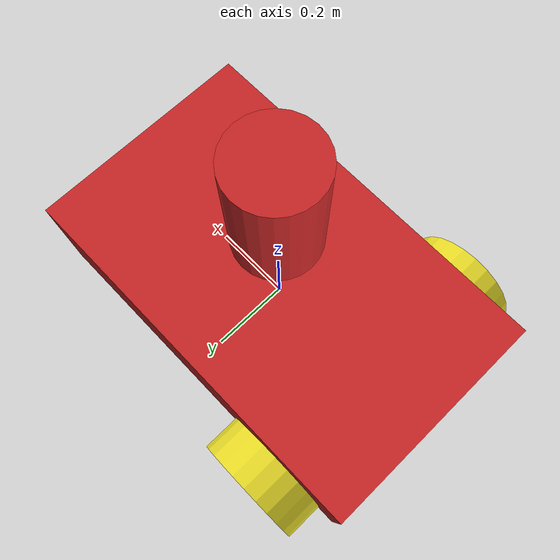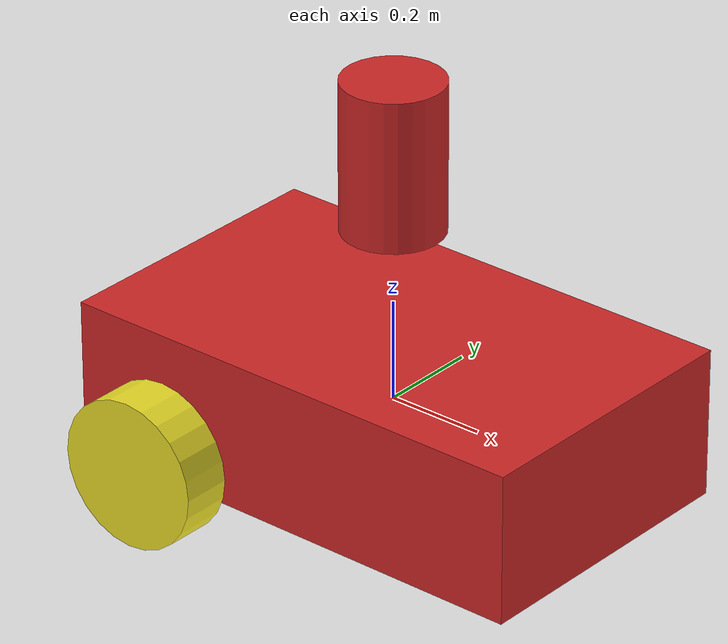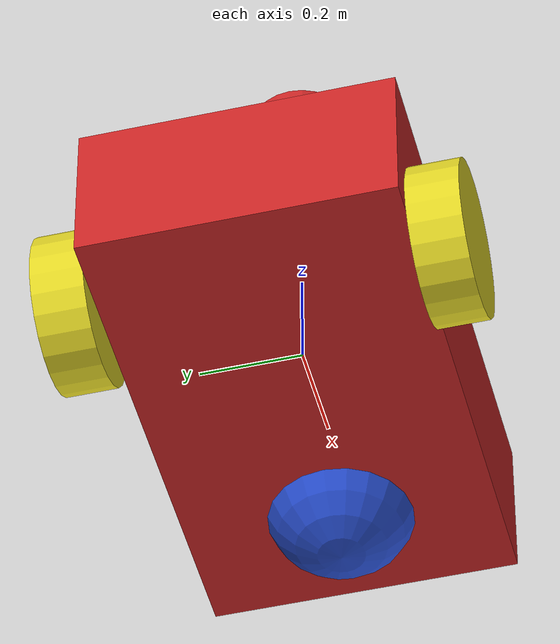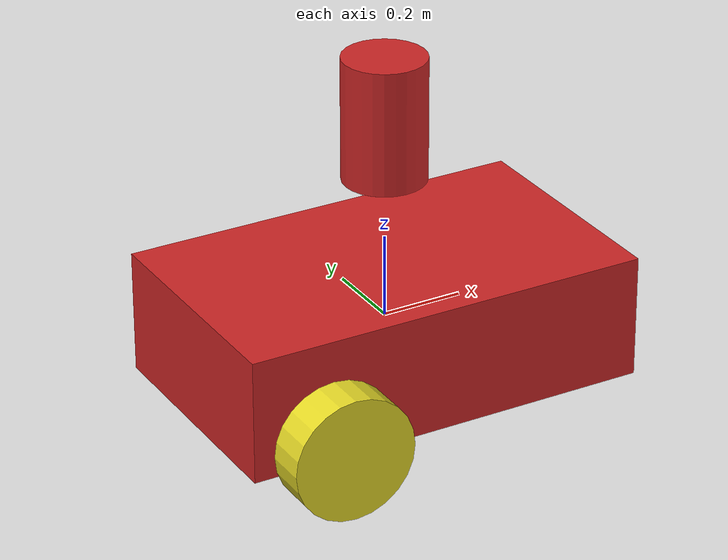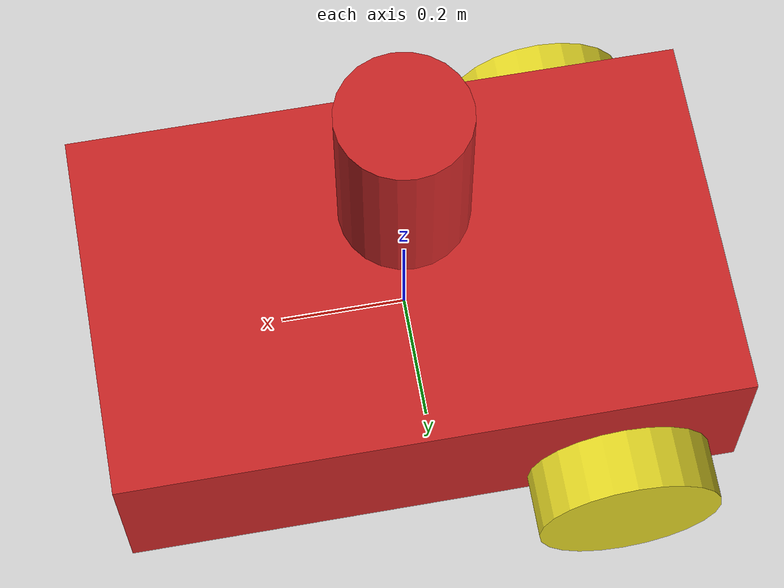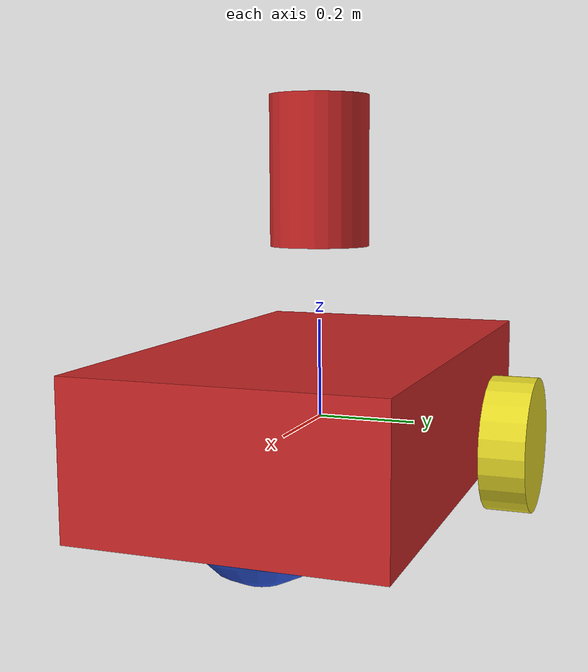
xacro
<?xml version="1.0"?>
<robot name="superbot" xmlns:xacro="http://www.ros.org/wiki/xacro">
    <!-- Body dimensions -->
    <xacro:property name="body_x" value="1"/>
    <xacro:property name="body_y" value="0.6"/>
    <xacro:property name="body_z" value="0.3"/>

    <!-- Wheel dimensions and locations -->
    <xacro:property name="wheel_r" value="0.15"/>
    <xacro:property name="wheel_l" value="0.1"/>
    <xacro:property name="wheel_z" value="-0.1"/>

    <!-- Castor wheel dimensions and locations -->
    <xacro:property name="castor_r" value="0.15"/>
    <xacro:property name="castor_z" value="-0.1"/>

    <!-- Material density -->
    <xacro:property name="body_density" value="2710.0"/>
    <xacro:property name="wheel_density" value="2710.0"/>
    <xacro:property name="castor_density" value="2710.0"/>

    <!-- Pi Value -->
    <xacro:property name="pi" value="3.14159265"/>

    <!-- Mass property -->
    <xacro:property name="body_mass" value="${body_density * body_x * body_y * body_z}"/>
    <xacro:property name="wheel_mass" value="${wheel_density * pi * wheel_r * wheel_r * wheel_l}"/>
    <xacro:property name="castor_mass" value="${castor_density * (4.0 / 3.0) * pi * castor_r * castor_r * castor_r}"/>

    <!-- Moment of Inertia Wheel -->
    <xacro:property name="Iz_wheel" value="${0.5 * wheel_mass * wheel_r * wheel_r}"/>
    <xacro:property name="I_wheel" value="${(1.0 / 12.0) * wheel_mass * (3.0 * wheel_r * wheel_r + wheel_l * wheel_l)}"/>

    <!-- Moment of Inertia Castor Wheel -->
    <xacro:property name="I_castor" value="${(2.0 / 5.0) * castor_mass * castor_r * castor_r}"/>

    <!-- Inertial macro for wheel -->
    <xacro:macro name="inertia_wheel">
        <inertial>
            <origin rpy="0 0 0" xyz="0 0 0"/>
            <mass value="${wheel_mass}"/>
            <inertia ixx="${I_wheel}" ixy="0.0" ixz="0.0" iyy="${I_wheel}" iyz="0.0" izz="${Iz_wheel}"/>
        </inertial>
    </xacro:macro>

    <!-- Inertial macro for castor wheel -->
    <xacro:macro name="inertia_castor">
        <inertial>
            <origin rpy="0 0 0" xyz="0 0 0"/>
            <mass value="${castor_mass}"/>
            <inertia ixx="${I_castor}" ixy="0.0" ixz="0.0" iyy="${I_castor}" iyz="0.0" izz="${I_castor}"/>
        </inertial>
    </xacro:macro>

    <!-- Gazebo Plugin Include -->
    <xacro:include filename="$(find superbot_description)/URDF/superbot.gazebo.xacro"/>

    <!-- Define Lidar Properties -->
    <xacro:property name="lidar_radius" value="0.1"/>
    <xacro:property name="lidar_length" value="0.3"/>
    <xacro:property name="lidar_z" value="0.25"/>

    <!-- Dummy Link and Joint -->
    <link name="dummy"/>
    <joint name="dummy_joint" type="fixed">
        <parent link="dummy"/>
        <child link="base_link"/>
    </joint>

    <!-- Base Link -->
    <link name="base_link">
        <visual>
            <geometry>
                <box size="${body_x} ${body_y} ${body_z}"/>
            </geometry>
            <origin rpy="0 0 0" xyz="0 0 0"/>
        </visual>
        <collision>
            <geometry>
                <box size="${body_x} ${body_y} ${body_z}"/>
            </geometry>
            <origin rpy="0 0 0" xyz="0 0 0"/>
        </collision>
        <inertial>
            <origin rpy="0 0 0" xyz="0 0 0"/>
            <mass value="${body_mass}"/>
            <inertia ixx="${(1 / 12) * body_mass * (body_y * body_y + body_z * body_z)}"
                     ixy="0"
                     ixz="0"
                     iyy="${(1 / 12) * body_mass * (body_x * body_x + body_z * body_z)}"
                     iyz="0"
                     izz="${(1 / 12) * body_mass * (body_x * body_x + body_y * body_y)}"/>
        </inertial>
    </link>

    <!-- Wheel Joints and Links -->
    <!-- Right Wheel -->
    <joint name="right_joint" type="continuous">
        <parent link="base_link"/>
        <child link="right_wheel"/>
        <origin xyz="${-2 * wheel_r} ${-body_y / 2 - wheel_l / 2} ${wheel_z}" rpy="0 0 0"/>
        <axis xyz="0 1 0"/>
    </joint>

    <link name="right_wheel">
        <visual>
            <origin rpy="1.57 0 0" xyz="0 0 0"/>
            <geometry>
                <cylinder length="${wheel_l}" radius="${wheel_r}"/>
            </geometry>
        </visual>
        <collision>
            <origin rpy="1.57 0 0" xyz="0 0 0"/>
            <geometry>
                <cylinder length="${wheel_l}" radius="${wheel_r}"/>
            </geometry>
        </collision>
        <xacro:inertia_wheel/>
    </link>

    <!-- Left Wheel -->
    <joint name="left_joint" type="continuous">
        <parent link="base_link"/>
        <child link="left_wheel"/>
        <origin xyz="${-2 * wheel_r} ${body_y / 2 + wheel_l / 2} ${wheel_z}" rpy="0 0 0"/>
        <axis xyz="0 1 0"/>
    </joint>

    <link name="left_wheel">
        <visual>
            <origin rpy="1.57 0 0" xyz="0 0 0"/>
            <geometry>
                <cylinder length="${wheel_l}" radius="${wheel_r}"/>
            </geometry>
        </visual>
        <collision>
            <origin rpy="1.57 0 0" xyz="0 0 0"/>
            <geometry>
                <cylinder length="${wheel_l}" radius="${wheel_r}"/>
            </geometry>
        </collision>
        <xacro:inertia_wheel/>
    </link>

    <!-- Castor Wheel -->
    <joint name="castor_joint" type="fixed">
        <parent link="base_link"/>
        <child link="castor_wheel"/>
        <origin xyz="${2 * castor_r} 0 ${castor_z}" rpy="0 0 0"/>
    </joint>

    <link name="castor_wheel">
        <visual>
            <origin rpy="0 0 0" xyz="0 0 0"/>
            <geometry>
                <sphere radius="${castor_r}"/>
            </geometry>
        </visual>
        <collision>
            <origin rpy="0 0 0" xyz="0 0 0"/>
            <geometry>
                <sphere radius="${castor_r}"/>
            </geometry>
        </collision>
        <xacro:inertia_castor/>
    </link>

    <!-- Lidar -->
    <link name="lidar">
        <visual>
            <origin xyz="0 0 ${lidar_z}" rpy="0 0 0"/>
            <geometry>
                <cylinder radius="${lidar_radius}" length="${lidar_length}"/>
            </geometry>
            <material name="red"/>
        </visual>
        <collision>
            <origin xyz="0 0 ${lidar_z}" rpy="0 0 0"/>
            <geometry>
                <cylinder radius="${lidar_radius}" length="${lidar_length}"/>
            </geometry>
        </collision>
    </link>

    <joint name="lidar_joint" type="fixed">
        <parent link="base_link"/>
        <child link="lidar"/>
        <origin xyz="0 0 ${lidar_z}" rpy="0 0 0"/>
    </joint>

</robot>
